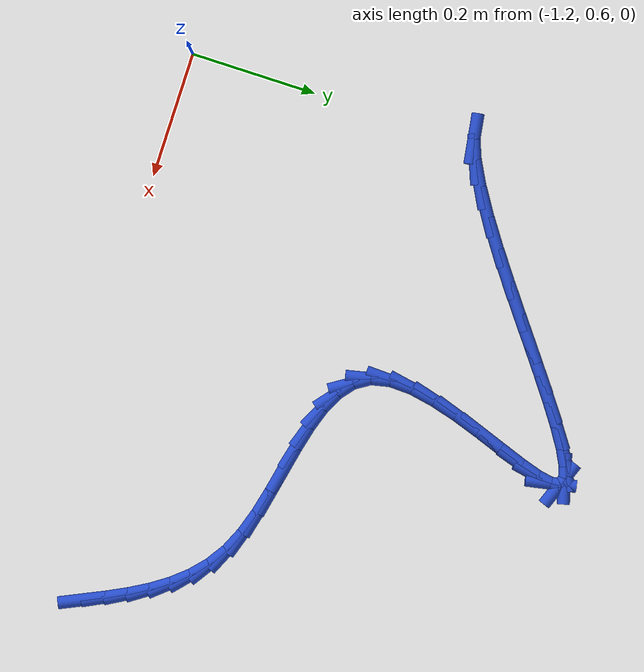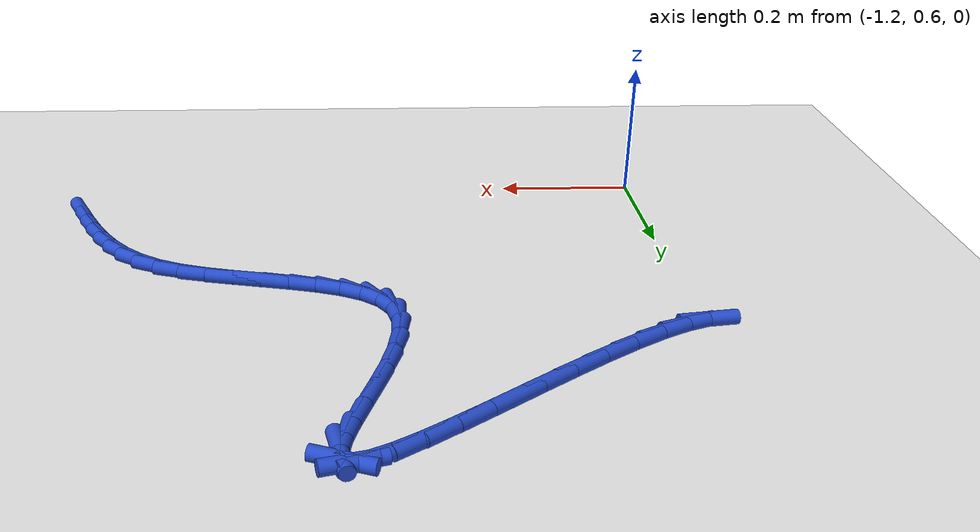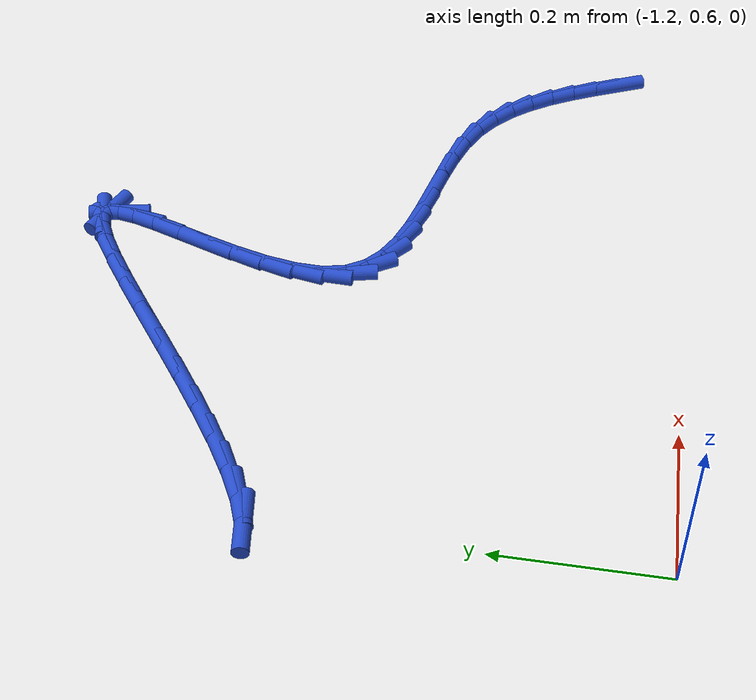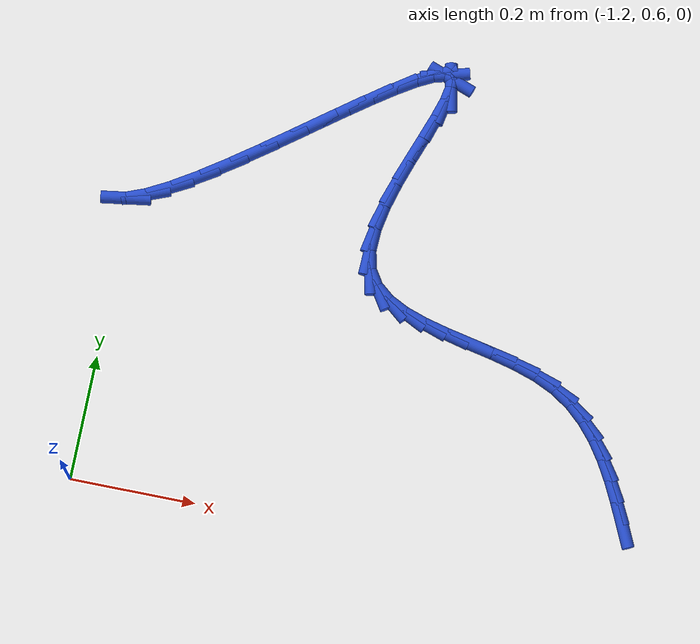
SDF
<sdf version="1.6">
 <world name="default">
  <model name="ground_plane">
   <static>1</static>
   <link name="link">
    <collision name="collision">
     <geometry><plane><normal>0 0 1</normal><size>100 100</size></plane></geometry>
     <surface><friction><ode><mu>100</mu><mu2>50</mu2></ode></friction></surface>
    </collision>
    <visual name="visual">
     <cast_shadows>0</cast_shadows>
     <geometry><plane><normal>0 0 1</normal><size>100 100</size></plane></geometry>
     <material>
      <script><uri>file://media/materials/scripts/gazebo.material</uri><name>Gazebo/WhiteGlow</name></script>
     </material>
    </visual>
   </link>
  </model>
  <model name="line">
   <link name="link_23">
    <pose>-0.3370131498617055 0.6992968958222338 0.01 0 1.57 -1.1403058005008975</pose>
    <collision name="collision">
     <geometry><cylinder><radius>0.01</radius><length>0.08</length></cylinder></geometry>
    </collision>
    <visual name="visual">
     <material>
      <script><name>Gazebo/Blue</name><uri>file://media/materials/scripts/gazebo.material</uri></script>
     </material>
     <geometry><cylinder><radius>0.01</radius><length>0.08</length></cylinder></geometry>
    </visual>
   </link>
   <link name="link_24">
    <pose>-0.35192363776234725 0.7317664199680269 0.01 0 1.57 -1.1085566555772426</pose>
    <collision name="collision">
     <geometry><cylinder><radius>0.01</radius><length>0.08</length></cylinder></geometry>
    </collision>
    <visual name="visual">
     <material>
      <script><name>Gazebo/Blue</name><uri>file://media/materials/scripts/gazebo.material</uri></script>
     </material>
     <geometry><cylinder><radius>0.01</radius><length>0.08</length></cylinder></geometry>
    </visual>
   </link>
   <link name="link_25">
    <pose>-0.36763289396759186 0.7632958330109593 0.01 0 1.57 -1.0535550653636772</pose>
    <collision name="collision">
     <geometry><cylinder><radius>0.01</radius><length>0.08</length></cylinder></geometry>
    </collision>
    <visual name="visual">
     <material>
      <script><name>Gazebo/Blue</name><uri>file://media/materials/scripts/gazebo.material</uri></script>
     </material>
     <geometry><cylinder><radius>0.01</radius><length>0.08</length></cylinder></geometry>
    </visual>
   </link>
   <link name="link_26">
    <pose>-0.38474185883340933 0.7933693616265868 0.01 0 1.57 -0.9736113542305437</pose>
    <collision name="collision">
     <geometry><cylinder><radius>0.01</radius><length>0.08</length></cylinder></geometry>
    </collision>
    <visual name="visual">
     <material>
      <script><name>Gazebo/Blue</name><uri>file://media/materials/scripts/gazebo.material</uri></script>
     </material>
     <geometry><cylinder><radius>0.01</radius><length>0.08</length></cylinder></geometry>
    </visual>
   </link>
   <link name="link_27">
    <pose>-0.4038514727157696 0.8214712324904654 0.01 0 1.57 -0.8676880570444547</pose>
    <collision name="collision">
     <geometry><cylinder><radius>0.01</radius><length>0.08</length></cylinder></geometry>
    </collision>
    <visual name="visual">
     <material>
      <script><name>Gazebo/Blue</name><uri>file://media/materials/scripts/gazebo.material</uri></script>
     </material>
     <geometry><cylinder><radius>0.01</radius><length>0.08</length></cylinder></geometry>
    </visual>
   </link>
   <link name="link_28">
    <pose>-0.42556267597064257 0.8470856722781511 0.01 0 1.57 -0.7369878495172038</pose>
    <collision name="collision">
     <geometry><cylinder><radius>0.01</radius><length>0.08</length></cylinder></geometry>
    </collision>
    <visual name="visual">
     <material>
      <script><name>Gazebo/Blue</name><uri>file://media/materials/scripts/gazebo.material</uri></script>
     </material>
     <geometry><cylinder><radius>0.01</radius><length>0.08</length></cylinder></geometry>
    </visual>
   </link>
   <link name="link_29">
    <pose>-0.45047640895399843 0.8696969076652002 0.01 0 1.57 -0.5867348057465943</pose>
    <collision name="collision">
     <geometry><cylinder><radius>0.01</radius><length>0.08</length></cylinder></geometry>
    </collision>
    <visual name="visual">
     <material>
      <script><name>Gazebo/Blue</name><uri>file://media/materials/scripts/gazebo.material</uri></script>
     </material>
     <geometry><cylinder><radius>0.01</radius><length>0.08</length></cylinder></geometry>
    </visual>
   </link>
   <link name="link_30">
    <pose>-0.479193612021807 0.8887891653271685 0.01 0 1.57 -0.43130533783535147</pose>
    <collision name="collision">
     <geometry><cylinder><radius>0.01</radius><length>0.08</length></cylinder></geometry>
    </collision>
    <visual name="visual">
     <material>
      <script><name>Gazebo/Blue</name><uri>file://media/materials/scripts/gazebo.material</uri></script>
     </material>
     <geometry><cylinder><radius>0.01</radius><length>0.08</length></cylinder></geometry>
    </visual>
   </link>
   <link name="link_31">
    <pose>-0.5121694494627276 0.9039647072021862 0.01 0 1.57 -0.31400136566931497</pose>
    <collision name="collision">
     <geometry><cylinder><radius>0.01</radius><length>0.08</length></cylinder></geometry>
    </collision>
    <visual name="visual">
     <material>
      <script><name>Gazebo/Blue</name><uri>file://media/materials/scripts/gazebo.material</uri></script>
     </material>
     <geometry><cylinder><radius>0.01</radius><length>0.08</length></cylinder></geometry>
    </visual>
   </link>
   <link name="link_32">
    <pose>-0.5486440115682867 0.9158096438185157 0.01 0 1.57 -0.24343513789368326</pose>
    <collision name="collision">
     <geometry><cylinder><radius>0.01</radius><length>0.08</length></cylinder></geometry>
    </collision>
    <visual name="visual">
     <material>
      <script><name>Gazebo/Blue</name><uri>file://media/materials/scripts/gazebo.material</uri></script>
     </material>
     <geometry><cylinder><radius>0.01</radius><length>0.08</length></cylinder></geometry>
    </visual>
   </link>
   <link name="link_33">
    <pose>-0.5872538166115109 0.9253987995447657 0.01 0 1.57 -0.21045619641111354</pose>
    <collision name="collision">
     <geometry><cylinder><radius>0.01</radius><length>0.08</length></cylinder></geometry>
    </collision>
    <visual name="visual">
     <material>
      <script><name>Gazebo/Blue</name><uri>file://media/materials/scripts/gazebo.material</uri></script>
     </material>
     <geometry><cylinder><radius>0.01</radius><length>0.08</length></cylinder></geometry>
    </visual>
   </link>
   <link name="link_34">
    <pose>-0.6266310168645688 0.9338105339118472 0.01 0 1.57 -0.21117641054036693</pose>
    <collision name="collision">
     <geometry><cylinder><radius>0.01</radius><length>0.08</length></cylinder></geometry>
    </collision>
    <visual name="visual">
     <material>
      <script><name>Gazebo/Blue</name><uri>file://media/materials/scripts/gazebo.material</uri></script>
     </material>
     <geometry><cylinder><radius>0.01</radius><length>0.08</length></cylinder></geometry>
    </visual>
   </link>
   <link name="link_35">
    <pose>-0.6654077645996288 0.9421232064506707 0.01 0 1.57 -0.24727498064319328</pose>
    <collision name="collision">
     <geometry><cylinder><radius>0.01</radius><length>0.08</length></cylinder></geometry>
    </collision>
    <visual name="visual">
     <material>
      <script><name>Gazebo/Blue</name><uri>file://media/materials/scripts/gazebo.material</uri></script>
     </material>
     <geometry><cylinder><radius>0.01</radius><length>0.08</length></cylinder></geometry>
    </visual>
   </link>
   <link name="link_36">
    <pose>-0.70221621208886 0.9514151766921469 0.01 0 1.57 -0.3269093243362142</pose>
    <collision name="collision">
     <geometry><cylinder><radius>0.01</radius><length>0.08</length></cylinder></geometry>
    </collision>
    <visual name="visual">
     <material>
      <script><name>Gazebo/Blue</name><uri>file://media/materials/scripts/gazebo.material</uri></script>
     </material>
     <geometry><cylinder><radius>0.01</radius><length>0.08</length></cylinder></geometry>
    </visual>
   </link>
   <link name="link_37">
    <pose>-0.7356885116044303 0.9627648041671869 0.01 0 1.57 -0.4664659619714852</pose>
    <collision name="collision">
     <geometry><cylinder><radius>0.01</radius><length>0.08</length></cylinder></geometry>
    </collision>
    <visual name="visual">
     <material>
      <script><name>Gazebo/Blue</name><uri>file://media/materials/scripts/gazebo.material</uri></script>
     </material>
     <geometry><cylinder><radius>0.01</radius><length>0.08</length></cylinder></geometry>
    </visual>
   </link>
   <link name="link_38">
    <pose>-0.7644568154185091 0.9772504484067013 0.01 0 1.57 -0.6891558496404054</pose>
    <collision name="collision">
     <geometry><cylinder><radius>0.01</radius><length>0.08</length></cylinder></geometry>
    </collision>
    <visual name="visual">
     <material>
      <script><name>Gazebo/Blue</name><uri>file://media/materials/scripts/gazebo.material</uri></script>
     </material>
     <geometry><cylinder><radius>0.01</radius><length>0.08</length></cylinder></geometry>
    </visual>
   </link>
   <link name="link_39">
    <pose>-0.7871532758032648 0.9959504689416007 0.01 0 1.57 -1.0044038426361575</pose>
    <collision name="collision">
     <geometry><cylinder><radius>0.01</radius><length>0.08</length></cylinder></geometry>
    </collision>
    <visual name="visual">
     <material>
      <script><name>Gazebo/Blue</name><uri>file://media/materials/scripts/gazebo.material</uri></script>
     </material>
     <geometry><cylinder><radius>0.01</radius><length>0.08</length></cylinder></geometry>
    </visual>
   </link>
   <link name="link_40">
    <pose>-0.802410045030866 1.0199432253027962 0.01 0 1.57 -1.355166654693067</pose>
    <collision name="collision">
     <geometry><cylinder><radius>0.01</radius><length>0.08</length></cylinder></geometry>
    </collision>
    <visual name="visual">
     <material>
      <script><name>Gazebo/Blue</name><uri>file://media/materials/scripts/gazebo.material</uri></script>
     </material>
     <geometry><cylinder><radius>0.01</radius><length>0.08</length></cylinder></geometry>
    </visual>
   </link>
   <link name="link_41">
    <pose>-0.8090279150845493 1.0501569808338767 0.01 0 1.57 1.533358573759522</pose>
    <collision name="collision">
     <geometry><cylinder><radius>0.01</radius><length>0.08</length></cylinder></geometry>
    </collision>
    <visual name="visual">
     <material>
      <script><name>Gazebo/Blue</name><uri>file://media/materials/scripts/gazebo.material</uri></script>
     </material>
     <geometry><cylinder><radius>0.01</radius><length>0.08</length></cylinder></geometry>
    </visual>
   </link>
   <link name="link_42">
    <pose>-0.8076912663839207 1.0858435287220813 0.01 0 1.57 1.384298192352535</pose>
    <collision name="collision">
     <geometry><cylinder><radius>0.01</radius><length>0.08</length></cylinder></geometry>
    </collision>
    <visual name="visual">
     <material>
      <script><name>Gazebo/Blue</name><uri>file://media/materials/scripts/gazebo.material</uri></script>
     </material>
     <geometry><cylinder><radius>0.01</radius><length>0.08</length></cylinder></geometry>
    </visual>
   </link>
   <link name="link_43">
    <pose>-0.8002641752650999 1.125204684909398 0.01 0 1.57 1.2956894341613683</pose>
    <collision name="collision">
     <geometry><cylinder><radius>0.01</radius><length>0.08</length></cylinder></geometry>
    </collision>
    <visual name="visual">
     <material>
      <script><name>Gazebo/Blue</name><uri>file://media/materials/scripts/gazebo.material</uri></script>
     </material>
     <geometry><cylinder><radius>0.01</radius><length>0.08</length></cylinder></geometry>
    </visual>
   </link>
   <link name="link_44">
    <pose>-0.7886288436129738 1.1664261328637602 0.01 0 1.57 1.2445693837532175</pose>
    <collision name="collision">
     <geometry><cylinder><radius>0.01</radius><length>0.08</length></cylinder></geometry>
    </collision>
    <visual name="visual">
     <material>
      <script><name>Gazebo/Blue</name><uri>file://media/materials/scripts/gazebo.material</uri></script>
     </material>
     <geometry><cylinder><radius>0.01</radius><length>0.08</length></cylinder></geometry>
    </visual>
   </link>
   <link name="link_45">
    <pose>-0.7746674733124307 1.2076935560531032 0.01 0 1.57 1.2210886437733606</pose>
    <collision name="collision">
     <geometry><cylinder><radius>0.01</radius><length>0.08</length></cylinder></geometry>
    </collision>
    <visual name="visual">
     <material>
      <script><name>Gazebo/Blue</name><uri>file://media/materials/scripts/gazebo.material</uri></script>
     </material>
     <geometry><cylinder><radius>0.01</radius><length>0.08</length></cylinder></geometry>
    </visual>
   </link>
   <link name="link_46">
    <pose>-0.7602622662483584 1.2471926379453608 0.01 0 1.57 1.2243308106100692</pose>
    <collision name="collision">
     <geometry><cylinder><radius>0.01</radius><length>0.08</length></cylinder></geometry>
    </collision>
    <visual name="visual">
     <material>
      <script><name>Gazebo/Blue</name><uri>file://media/materials/scripts/gazebo.material</uri></script>
     </material>
     <geometry><cylinder><radius>0.01</radius><length>0.08</length></cylinder></geometry>
    </visual>
   </link>
   <link name="link_47">
    <pose>-0.7472954243056444 1.2831090620084673 0.01 0 1.57 1.2646626121236766</pose>
    <collision name="collision">
     <geometry><cylinder><radius>0.01</radius><length>0.08</length></cylinder></geometry>
    </collision>
    <visual name="visual">
     <material>
      <script><name>Gazebo/Blue</name><uri>file://media/materials/scripts/gazebo.material</uri></script>
     </material>
     <geometry><cylinder><radius>0.01</radius><length>0.08</length></cylinder></geometry>
    </visual>
   </link>
   <link name="link_48">
    <pose>-0.737649149369177 1.313628511710357 0.01 0 1.57 1.382415151785069</pose>
    <collision name="collision">
     <geometry><cylinder><radius>0.01</radius><length>0.08</length></cylinder></geometry>
    </collision>
    <visual name="visual">
     <material>
      <script><name>Gazebo/Blue</name><uri>file://media/materials/scripts/gazebo.material</uri></script>
     </material>
     <geometry><cylinder><radius>0.01</radius><length>0.08</length></cylinder></geometry>
    </visual>
   </link>
   <link name="link_49">
    <pose>-0.7332056433238435 1.3369366705189636 0.01 0 1.57 -1.3879835540624126</pose>
    <collision name="collision">
     <geometry><cylinder><radius>0.01</radius><length>0.08</length></cylinder></geometry>
    </collision>
    <visual name="visual">
     <material>
      <script><name>Gazebo/Blue</name><uri>file://media/materials/scripts/gazebo.material</uri></script>
     </material>
     <geometry><cylinder><radius>0.01</radius><length>0.08</length></cylinder></geometry>
    </visual>
   </link>
   <link name="link_50">
    <pose>-0.7358463157382616 1.351220076887639 0.01 0 1.57 -0.3645471963744435</pose>
    <collision name="collision">
     <geometry><cylinder><radius>0.01</radius><length>0.08</length></cylinder></geometry>
    </collision>
    <visual name="visual">
     <material>
      <script><name>Gazebo/Blue</name><uri>file://media/materials/scripts/gazebo.material</uri></script>
     </material>
     <geometry><cylinder><radius>0.01</radius><length>0.08</length></cylinder></geometry>
    </visual>
   </link>
   <link name="link_51">
    <pose>-0.7467790672484634 1.3553920501485872 0.01 0 1.57 0.2623074517618695</pose>
    <collision name="collision">
     <geometry><cylinder><radius>0.01</radius><length>0.08</length></cylinder></geometry>
    </collision>
    <visual name="visual">
     <material>
      <script><name>Gazebo/Blue</name><uri>file://media/materials/scripts/gazebo.material</uri></script>
     </material>
     <geometry><cylinder><radius>0.01</radius><length>0.08</length></cylinder></geometry>
    </visual>
   </link>
   <link name="link_52">
    <pose>-0.765311879546534 1.3504161048029624 0.01 0 1.57 0.47149615954381424</pose>
    <collision name="collision">
     <geometry><cylinder><radius>0.01</radius><length>0.08</length></cylinder></geometry>
    </collision>
    <visual name="visual">
     <material>
      <script><name>Gazebo/Blue</name><uri>file://media/materials/scripts/gazebo.material</uri></script>
     </material>
     <geometry><cylinder><radius>0.01</radius><length>0.08</length></cylinder></geometry>
    </visual>
   </link>
   <link name="link_53">
    <pose>-0.7904201169989908 1.3376146814188272 0.01 0 1.57 0.5619362551408126</pose>
    <collision name="collision">
     <geometry><cylinder><radius>0.01</radius><length>0.08</length></cylinder></geometry>
    </collision>
    <visual name="visual">
     <material>
      <script><name>Gazebo/Blue</name><uri>file://media/materials/scripts/gazebo.material</uri></script>
     </material>
     <geometry><cylinder><radius>0.01</radius><length>0.08</length></cylinder></geometry>
    </visual>
   </link>
   <link name="link_54">
    <pose>-0.8210791439723515 1.3183102205642412 0.01 0 1.57 0.6079630547331005</pose>
    <collision name="collision">
     <geometry><cylinder><radius>0.01</radius><length>0.08</length></cylinder></geometry>
    </collision>
    <visual name="visual">
     <material>
      <script><name>Gazebo/Blue</name><uri>file://media/materials/scripts/gazebo.material</uri></script>
     </material>
     <geometry><cylinder><radius>0.01</radius><length>0.08</length></cylinder></geometry>
    </visual>
   </link>
   <link name="link_55">
    <pose>-0.8562643248331331 1.293825162807265 0.01 0 1.57 0.6322943009306978</pose>
    <collision name="collision">
     <geometry><cylinder><radius>0.01</radius><length>0.08</length></cylinder></geometry>
    </collision>
    <visual name="visual">
     <material>
      <script><name>Gazebo/Blue</name><uri>file://media/materials/scripts/gazebo.material</uri></script>
     </material>
     <geometry><cylinder><radius>0.01</radius><length>0.08</length></cylinder></geometry>
    </visual>
   </link>
   <link name="link_56">
    <pose>-0.8949510239478529 1.2654819487159596 0.01 0 1.57 0.6435981748133929</pose>
    <collision name="collision">
     <geometry><cylinder><radius>0.01</radius><length>0.08</length></cylinder></geometry>
    </collision>
    <visual name="visual">
     <material>
      <script><name>Gazebo/Blue</name><uri>file://media/materials/scripts/gazebo.material</uri></script>
     </material>
     <geometry><cylinder><radius>0.01</radius><length>0.08</length></cylinder></geometry>
    </visual>
   </link>
   <link name="link_57">
    <pose>-0.9361146056830284 1.234603018858386 0.01 0 1.57 0.6454555720517582</pose>
    <collision name="collision">
     <geometry><cylinder><radius>0.01</radius><length>0.08</length></cylinder></geometry>
    </collision>
    <visual name="visual">
     <material>
      <script><name>Gazebo/Blue</name><uri>file://media/materials/scripts/gazebo.material</uri></script>
     </material>
     <geometry><cylinder><radius>0.01</radius><length>0.08</length></cylinder></geometry>
    </visual>
   </link>
   <link name="link_58">
    <pose>-0.9787304344051765 1.2025108138026046 0.01 0 1.57 0.6390324356585301</pose>
    <collision name="collision">
     <geometry><cylinder><radius>0.01</radius><length>0.08</length></cylinder></geometry>
    </collision>
    <visual name="visual">
     <material>
      <script><name>Gazebo/Blue</name><uri>file://media/materials/scripts/gazebo.material</uri></script>
     </material>
     <geometry><cylinder><radius>0.01</radius><length>0.08</length></cylinder></geometry>
    </visual>
   </link>
   <link name="link_59">
    <pose>-1.0217738744808147 1.1705277741166757 0.01 0 1.57 0.6238681012312358</pose>
    <collision name="collision">
     <geometry><cylinder><radius>0.01</radius><length>0.08</length></cylinder></geometry>
    </collision>
    <visual name="visual">
     <material>
      <script><name>Gazebo/Blue</name><uri>file://media/materials/scripts/gazebo.material</uri></script>
     </material>
     <geometry><cylinder><radius>0.01</radius><length>0.08</length></cylinder></geometry>
    </visual>
   </link>
   <link name="link_60">
    <pose>-1.06422029027646 1.1399763403686607 0.01 0 1.57 0.5977886635563228</pose>
    <collision name="collision">
     <geometry><cylinder><radius>0.01</radius><length>0.08</length></cylinder></geometry>
    </collision>
    <visual name="visual">
     <material>
      <script><name>Gazebo/Blue</name><uri>file://media/materials/scripts/gazebo.material</uri></script>
     </material>
     <geometry><cylinder><radius>0.01</radius><length>0.08</length></cylinder></geometry>
    </visual>
   </link>
   <link name="link_61">
    <pose>-1.10504504615863 1.1121789531266197 0.01 0 1.57 0.555945984451621</pose>
    <collision name="collision">
     <geometry><cylinder><radius>0.01</radius><length>0.08</length></cylinder></geometry>
    </collision>
    <visual name="visual">
     <material>
      <script><name>Gazebo/Blue</name><uri>file://media/materials/scripts/gazebo.material</uri></script>
     </material>
     <geometry><cylinder><radius>0.01</radius><length>0.08</length></cylinder></geometry>
    </visual>
   </link>
   <link name="link_62">
    <pose>-1.1432235064938423 1.0884580529586139 0.01 0 1.57 0.4881044734293043</pose>
    <collision name="collision">
     <geometry><cylinder><radius>0.01</radius><length>0.08</length></cylinder></geometry>
    </collision>
    <visual name="visual">
     <material>
      <script><name>Gazebo/Blue</name><uri>file://media/materials/scripts/gazebo.material</uri></script>
     </material>
     <geometry><cylinder><radius>0.01</radius><length>0.08</length></cylinder></geometry>
    </visual>
   </link>
   <link name="link_63">
    <pose>-1.177731035648614 1.0701360804327036 0.01 0 1.57 0.37109707915284335</pose>
    <collision name="collision">
     <geometry><cylinder><radius>0.01</radius><length>0.08</length></cylinder></geometry>
    </collision>
    <visual name="visual">
     <material>
      <script><name>Gazebo/Blue</name><uri>file://media/materials/scripts/gazebo.material</uri></script>
     </material>
     <geometry><cylinder><radius>0.01</radius><length>0.08</length></cylinder></geometry>
    </visual>
   </link>
   <link name="link_64">
    <pose>-1.2075429979894614 1.0585354761169494 0.01 0 1.57 0.14657653851748517</pose>
    <collision name="collision">
     <geometry><cylinder><radius>0.01</radius><length>0.08</length></cylinder></geometry>
    </collision>
    <visual name="visual">
     <material>
      <script><name>Gazebo/Blue</name><uri>file://media/materials/scripts/gazebo.material</uri></script>
     </material>
     <geometry><cylinder><radius>0.01</radius><length>0.08</length></cylinder></geometry>
    </visual>
   </link>
  </model>
 </world>
</sdf>
